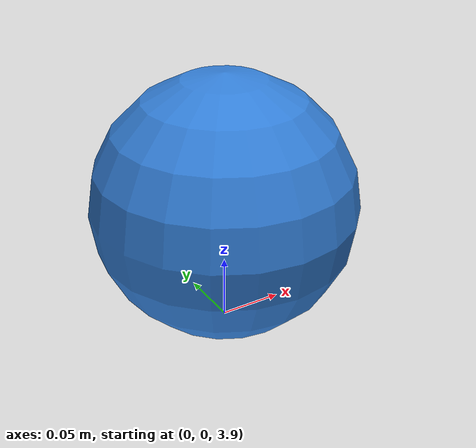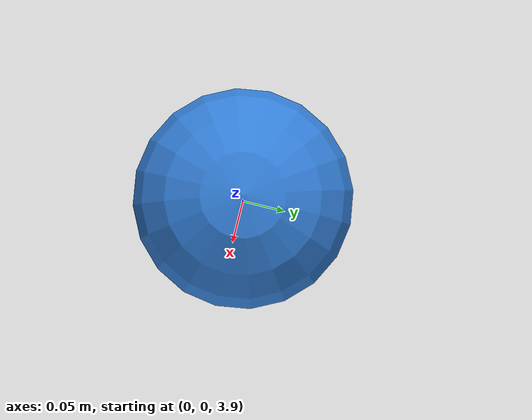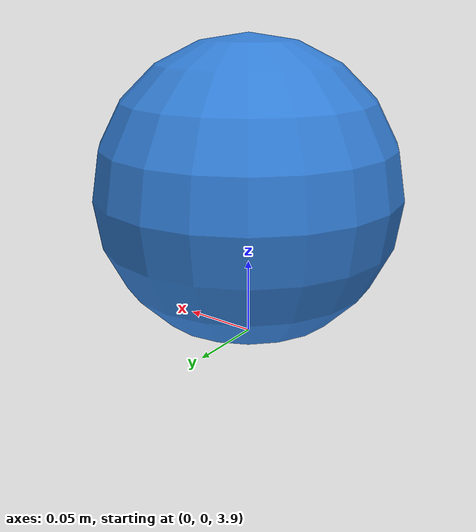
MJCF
<mujoco model="touch">
    <compiler angle="radian"/>
    <option gravity="0 0 -9.81" timestep="0.001" integrator="RK4"/>

    <worldbody>
        <geom name="floor" type="plane" size="5 5 0.1" condim="1"
              contype="1" conaffinity="1" rgba="0.3 0.3 0.35 1"/>
        <body name="ball_body" pos="0 0 4.0">
            <joint name="free" type="free"/>
            <inertial pos="0 0 0" mass="1.0" diaginertia="0.004 0.004 0.004"/>
            <geom name="ball" type="sphere" size="0.1" condim="1"
                  contype="1" conaffinity="1" rgba="0.2 0.5 0.85 1"/>
            <site name="touch_site" pos="0 0 0"/>
        </body>
    </worldbody>

    <sensor>
        <touch name="touch" site="touch_site"/>
    </sensor>
</mujoco>
